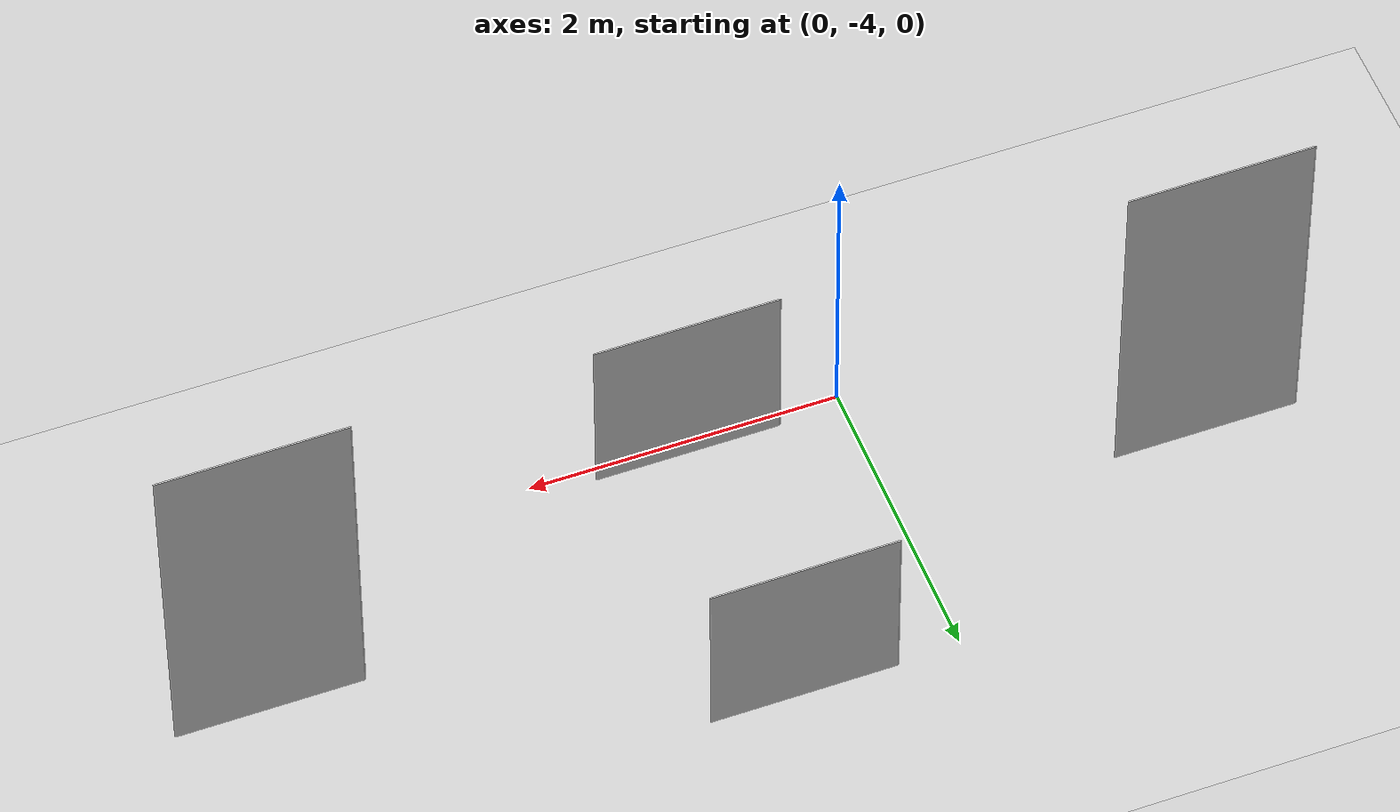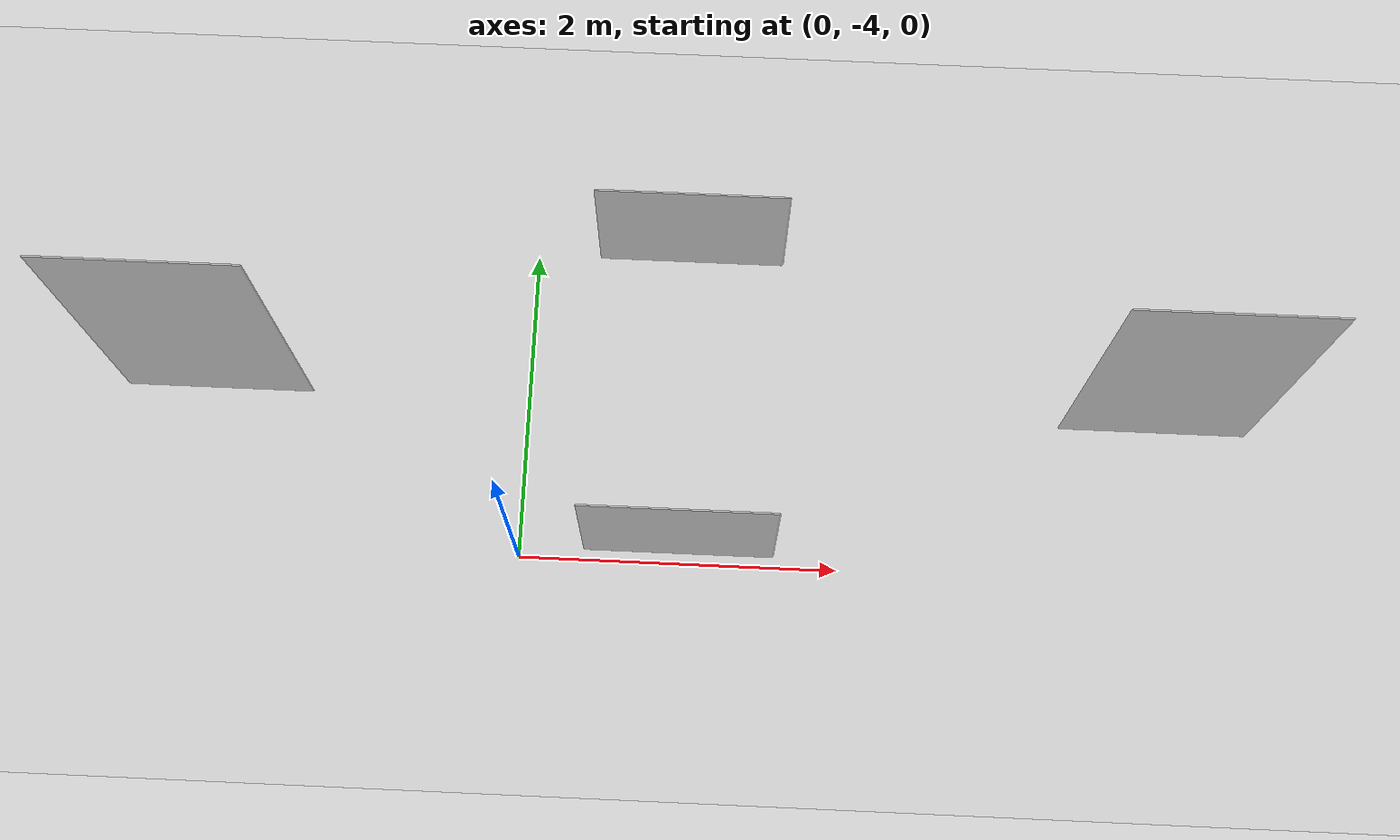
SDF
<sdf version="1.4">
 <world name="default">
  <light name="sun" type="directional">
   <pose>0 0 10 0 -0 0</pose>
   <diffuse>0.8 0.8 0.8 1</diffuse>
   <specular>0.2 0.2 0.2 1</specular>
   <attenuation>
    <range>1000</range>
    <constant>0.9</constant>
    <linear>0.01</linear>
    <quadratic>0.001</quadratic>
   </attenuation>
   <direction>-0.5 0.1 -0.9</direction>
  </light>
  <model name="ground_plane">
   <static>1</static>
   <link name="link">
    <collision name="collision">
     <geometry><plane><normal>0 0 1</normal><size>100 100</size></plane></geometry>
     <surface><friction><ode><mu>100</mu><mu2>50</mu2></ode></friction></surface>
    </collision>
    <visual name="visual">
     <cast_shadows>0</cast_shadows>
     <geometry><plane><normal>0 0 1</normal><size>100 100</size></plane></geometry>
     <material>
      <script><uri>file://media/materials/scripts/gazebo.material</uri><name>Gazebo/Grey</name></script>
     </material>
    </visual>
    <velocity_decay><linear>0</linear><angular>0</angular></velocity_decay>
   </link>
  </model>
  <physics type="ode">
   <max_step_size>0.001</max_step_size>
   <real_time_factor>1</real_time_factor>
   <real_time_update_rate>1000</real_time_update_rate>
   <gravity>0 0 -9.8</gravity>
  </physics>
  <scene><ambient>0.4 0.4 0.4 1</ambient><background>0.7 0.7 0.7 1</background><shadows>1</shadows></scene>
  <spherical_coordinates>
   <surface_model>EARTH_WGS84</surface_model>
   <latitude_deg>0</latitude_deg>
   <longitude_deg>0</longitude_deg>
   <elevation>0</elevation>
   <heading_deg>0</heading_deg>
  </spherical_coordinates>
  <model name="nist_maze_wall_120">
   <static>1</static>
   <link name="nist_maze_wall_120_link">
    <collision name="collision">
     <geometry>
      <mesh><uri>model://nist_maze_wall_120/meshes/nist_maze_wall_120.dae</uri><scale>1 1 1</scale></mesh>
     </geometry>
    </collision>
    <visual name="visual">
     <geometry>
      <mesh><uri>model://nist_maze_wall_120/meshes/nist_maze_wall_120.dae</uri><scale>1 1 1</scale></mesh>
     </geometry>
    </visual>
    <velocity_decay><linear>0</linear><angular>0</angular></velocity_decay>
   </link>
   <pose>1 -2.56795 0 0 -0 0</pose>
  </model>
  <model name="nist_maze_wall_120_0">
   <static>1</static>
   <link name="nist_maze_wall_120_link">
    <collision name="collision">
     <geometry>
      <mesh><uri>model://nist_maze_wall_120/meshes/nist_maze_wall_120.dae</uri><scale>1 1 1</scale></mesh>
     </geometry>
    </collision>
    <visual name="visual">
     <geometry>
      <mesh><uri>model://nist_maze_wall_120/meshes/nist_maze_wall_120.dae</uri><scale>1 1 1</scale></mesh>
     </geometry>
    </visual>
    <velocity_decay><linear>0</linear><angular>0</angular></velocity_decay>
   </link>
   <pose>1 -4.52554 0 0 -0 0</pose>
  </model>
  <model name="nist_maze_wall_240">
   <static>1</static>
   <link name="nist__maze_wall_240_link">
    <collision name="collision">
     <geometry>
      <mesh><uri>model://nist_maze_wall_240/meshes/nist_maze_wall_240.dae</uri><scale>1 1 1</scale></mesh>
     </geometry>
    </collision>
    <visual name="visual">
     <geometry>
      <mesh><uri>model://nist_maze_wall_240/meshes/nist_maze_wall_240.dae</uri><scale>1 1 1</scale></mesh>
     </geometry>
    </visual>
    <velocity_decay><linear>0</linear><angular>0</angular></velocity_decay>
   </link>
   <pose>4 -3.59812 0 0 -0 0</pose>
  </model>
  <model name="nist_maze_wall_240_0">
   <static>1</static>
   <link name="nist__maze_wall_240_link">
    <collision name="collision">
     <geometry>
      <mesh><uri>model://nist_maze_wall_240/meshes/nist_maze_wall_240.dae</uri><scale>1 1 1</scale></mesh>
     </geometry>
    </collision>
    <visual name="visual">
     <geometry>
      <mesh><uri>model://nist_maze_wall_240/meshes/nist_maze_wall_240.dae</uri><scale>1 1 1</scale></mesh>
     </geometry>
    </visual>
    <velocity_decay><linear>0</linear><angular>0</angular></velocity_decay>
   </link>
   <pose>-2 -3.56468 0 0 -0 0</pose>
  </model>
 </world>
</sdf>
